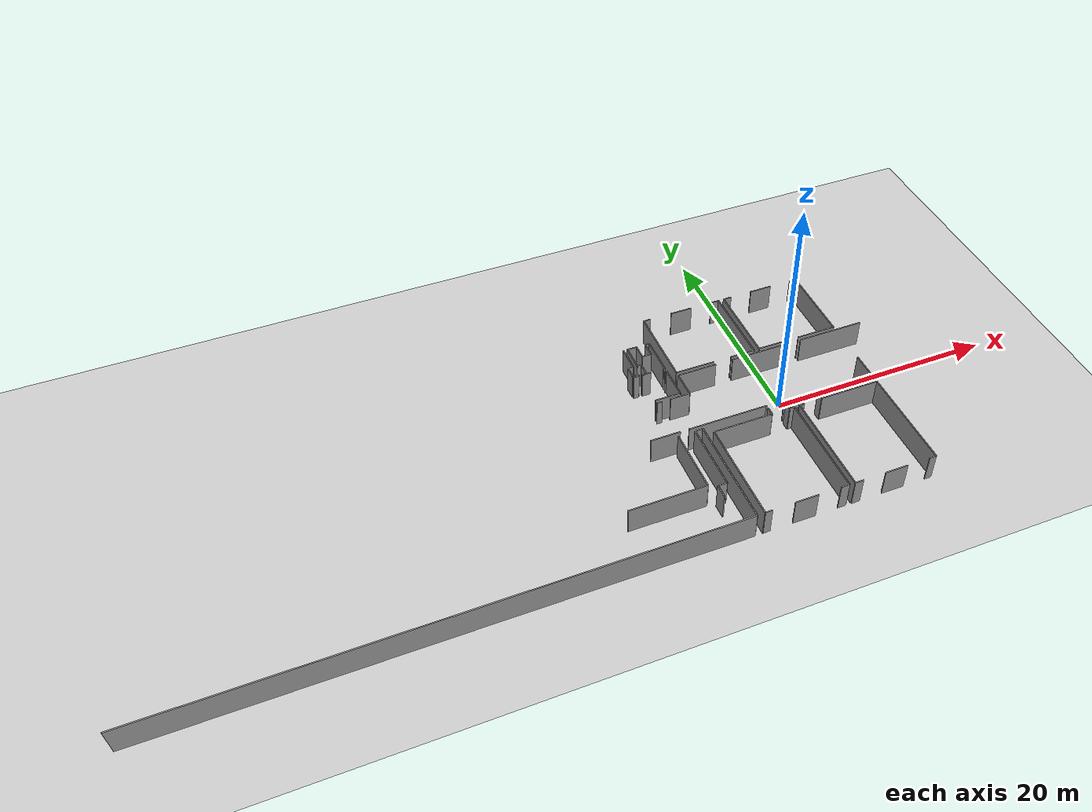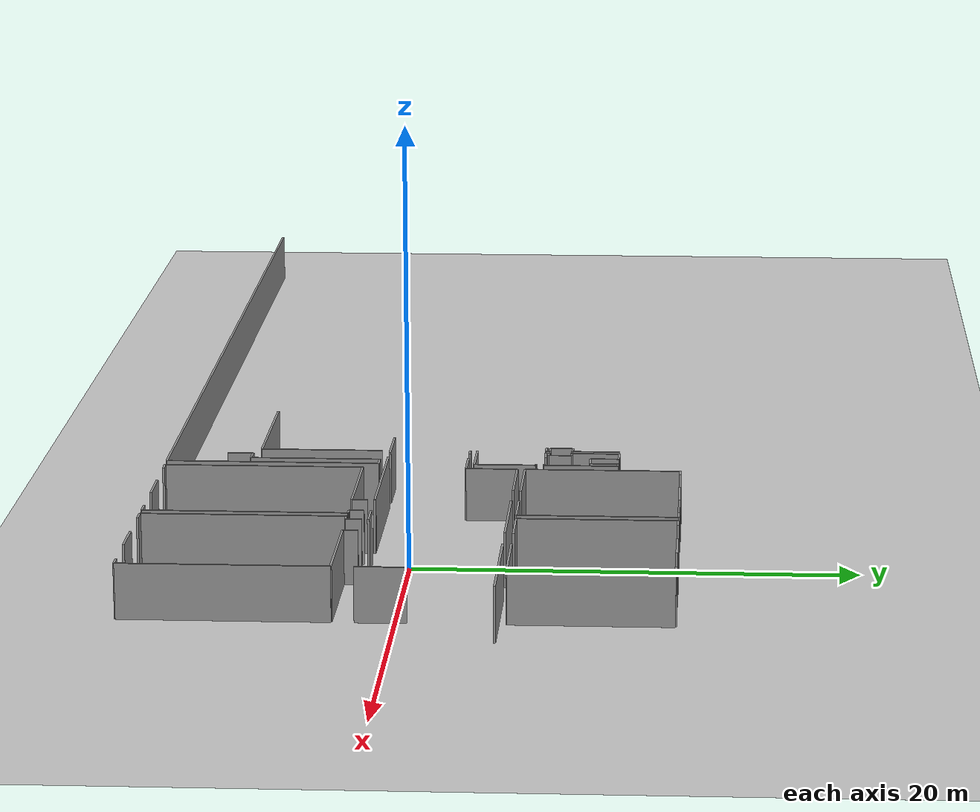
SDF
<sdf version="1.6">
 <world name="default">
  <model name="ground_plane">
   <static>1</static>
   <link name="link">
    <collision name="collision">
     <geometry><plane><normal>0 0 1</normal><size>100 100</size></plane></geometry>
     <surface><friction><ode><mu>100</mu><mu2>50</mu2></ode></friction></surface>
    </collision>
    <visual name="visual">
     <cast_shadows>0</cast_shadows>
     <geometry><plane><normal>0 0 1</normal><size>100 100</size></plane></geometry>
     <material>
      <script><uri>file://media/materials/scripts/gazebo.material</uri><name>Gazebo/Grey</name></script>
     </material>
    </visual>
   </link>
  </model>
  <model name="0510034693_Layout1">
   <static>1</static>
   <link name="Wall_7">
    <collision name="Wall_7_Collision">
     <geometry><box><size>1.19882918617 0.1 2.5</size></box></geometry>
     <pose>0.599414593086 0 1.25 0 0 0</pose>
    </collision>
    <visual name="Wall_7_Visual">
     <pose>0.599414593086 0 1.25 0 0 0</pose>
     <geometry><box><size>1.19882918617 0.1 2.5</size></box></geometry>
     <material>
      <script><uri>file://media/materials/scripts/gazebo.material</uri><name>Gazebo/Grey</name></script>
      <ambient>1 1 1 1</ambient>
     </material>
    </visual>
    <pose>46.5530333281 -21.2848274647 0 0 0 1.57079632679</pose>
   </link>
   <link name="Wall_8">
    <collision name="Wall_8_Collision">
     <geometry><box><size>0.790261303437 0.1 2.5</size></box></geometry>
     <pose>0.395130651718 0 1.25 0 0 0</pose>
    </collision>
    <visual name="Wall_8_Visual">
     <pose>0.395130651718 0 1.25 0 0 0</pose>
     <geometry><box><size>0.790261303437 0.1 2.5</size></box></geometry>
     <material>
      <script><uri>file://media/materials/scripts/gazebo.material</uri><name>Gazebo/Grey</name></script>
      <ambient>1 1 1 1</ambient>
     </material>
    </visual>
    <pose>46.5530333281 -20.0859982785 0 0 0 0.0</pose>
   </link>
   <link name="Wall_9">
    <collision name="Wall_9_Collision">
     <geometry><box><size>6.02964050336 0.1 2.5</size></box></geometry>
     <pose>3.01482025168 0 1.25 0 0 0</pose>
    </collision>
    <visual name="Wall_9_Visual">
     <pose>3.01482025168 0 1.25 0 0 0</pose>
     <geometry><box><size>6.02964050336 0.1 2.5</size></box></geometry>
     <material>
      <script><uri>file://media/materials/scripts/gazebo.material</uri><name>Gazebo/Grey</name></script>
      <ambient>1 1 1 1</ambient>
     </material>
    </visual>
    <pose>47.3432946316 -20.0859982785 0 0 0 1.57079632679</pose>
   </link>
   <link name="Wall_10">
    <collision name="Wall_10_Collision">
     <geometry><box><size>0.697848648608 0.1 2.5</size></box></geometry>
     <pose>0.348924324304 0 1.25 0 0 0</pose>
    </collision>
    <visual name="Wall_10_Visual">
     <pose>0.348924324304 0 1.25 0 0 0</pose>
     <geometry><box><size>0.697848648608 0.1 2.5</size></box></geometry>
     <material>
      <script><uri>file://media/materials/scripts/gazebo.material</uri><name>Gazebo/Grey</name></script>
      <ambient>1 1 1 1</ambient>
     </material>
    </visual>
    <pose>47.3432946316 -14.0563577751 0 0 0 0.0</pose>
   </link>
   <link name="Wall_11">
    <collision name="Wall_11_Collision">
     <geometry><box><size>9.88777376774 0.1 2.5</size></box></geometry>
     <pose>4.94388688387 0 1.25 0 0 0</pose>
    </collision>
    <visual name="Wall_11_Visual">
     <pose>4.94388688387 0 1.25 0 0 0</pose>
     <geometry><box><size>9.88777376774 0.1 2.5</size></box></geometry>
     <material>
      <script><uri>file://media/materials/scripts/gazebo.material</uri><name>Gazebo/Grey</name></script>
      <ambient>1 1 1 1</ambient>
     </material>
    </visual>
    <pose>48.0411432802 -14.0563577751 0 0 0 -1.57079632679</pose>
   </link>
   <link name="Wall_12">
    <collision name="Wall_12_Collision">
     <geometry><box><size>48.0411493179 0.1 2.5</size></box></geometry>
     <pose>24.0205746589 0 1.25 0 0 0</pose>
    </collision>
    <visual name="Wall_12_Visual">
     <pose>24.0205746589 0 1.25 0 0 0</pose>
     <geometry><box><size>48.0411493179 0.1 2.5</size></box></geometry>
     <material>
      <script><uri>file://media/materials/scripts/gazebo.material</uri><name>Gazebo/Grey</name></script>
      <ambient>1 1 1 1</ambient>
     </material>
    </visual>
    <pose>48.0411432802 -23.9441315429 0 0 0 -3.14109129998</pose>
   </link>
   <link name="Wall_21">
    <collision name="Wall_21_Collision">
     <geometry><box><size>0.46003501286 0.1 2.5</size></box></geometry>
     <pose>0.23001750643 0 1.25 0 0 0</pose>
    </collision>
    <visual name="Wall_21_Visual">
     <pose>0.23001750643 0 1.25 0 0 0</pose>
     <geometry><box><size>0.46003501286 0.1 2.5</size></box></geometry>
     <material>
      <script><uri>file://media/materials/scripts/gazebo.material</uri><name>Gazebo/Grey</name></script>
      <ambient>1 1 1 1</ambient>
     </material>
    </visual>
    <pose>45.7426161782 -9.93860706621 0 0 0 0.0</pose>
   </link>
   <link name="Wall_22">
    <collision name="Wall_22_Collision">
     <geometry><box><size>2.6179782545 0.1 2.5</size></box></geometry>
     <pose>1.30898912725 0 1.25 0 0 0</pose>
    </collision>
    <visual name="Wall_22_Visual">
     <pose>1.30898912725 0 1.25 0 0 0</pose>
     <geometry><box><size>2.6179782545 0.1 2.5</size></box></geometry>
     <material>
      <script><uri>file://media/materials/scripts/gazebo.material</uri><name>Gazebo/Grey</name></script>
      <ambient>1 1 1 1</ambient>
     </material>
    </visual>
    <pose>46.202651191 -13.6842985956 0 0 0 3.14159265359</pose>
   </link>
   <link name="Wall_60">
    <collision name="Wall_60_Collision">
     <geometry><box><size>5.68280782351 0.1 2.5</size></box></geometry>
     <pose>2.84140391176 0 1.25 0 0 0</pose>
    </collision>
    <visual name="Wall_60_Visual">
     <pose>2.84140391176 0 1.25 0 0 0</pose>
     <geometry><box><size>5.68280782351 0.1 2.5</size></box></geometry>
     <material>
      <script><uri>file://media/materials/scripts/gazebo.material</uri><name>Gazebo/Grey</name></script>
      <ambient>1 1 1 1</ambient>
     </material>
    </visual>
    <pose>45.848085765 -14.0677667449 0 0 0 -1.57079632679</pose>
   </link>
   <link name="Wall_61">
    <collision name="Wall_61_Collision">
     <geometry><box><size>6.77655080578 0.1 2.5</size></box></geometry>
     <pose>3.38827540289 0 1.25 0 0 0</pose>
    </collision>
    <visual name="Wall_61_Visual">
     <pose>3.38827540289 0 1.25 0 0 0</pose>
     <geometry><box><size>6.77655080578 0.1 2.5</size></box></geometry>
     <material>
      <script><uri>file://media/materials/scripts/gazebo.material</uri><name>Gazebo/Grey</name></script>
      <ambient>1 1 1 1</ambient>
     </material>
    </visual>
    <pose>45.848085765 -19.7505745684 0 0 0 -3.14063861605</pose>
   </link>
   <link name="Wall_69">
    <collision name="Wall_69_Collision">
     <geometry><box><size>0.144513616605 0.1 2.5</size></box></geometry>
     <pose>0.0722568083027 0 1.25 0 0 0</pose>
    </collision>
    <visual name="Wall_69_Visual">
     <pose>0.0722568083027 0 1.25 0 0 0</pose>
     <geometry><box><size>0.144513616605 0.1 2.5</size></box></geometry>
     <material>
      <script><uri>file://media/materials/scripts/gazebo.material</uri><name>Gazebo/Grey</name></script>
      <ambient>1 1 1 1</ambient>
     </material>
    </visual>
    <pose>47.8679804729 -6.73281333785 0 0 0 0.0</pose>
   </link>
   <link name="Wall_70">
    <collision name="Wall_70_Collision">
     <geometry><box><size>2.86732762631 0.1 2.5</size></box></geometry>
     <pose>1.43366381316 0 1.25 0 0 0</pose>
    </collision>
    <visual name="Wall_70_Visual">
     <pose>1.43366381316 0 1.25 0 0 0</pose>
     <geometry><box><size>2.86732762631 0.1 2.5</size></box></geometry>
     <material>
      <script><uri>file://media/materials/scripts/gazebo.material</uri><name>Gazebo/Grey</name></script>
      <ambient>1 1 1 1</ambient>
     </material>
    </visual>
    <pose>48.0124940895 -6.73281333785 0 0 0 -1.57079632679</pose>
   </link>
   <link name="Wall_71">
    <collision name="Wall_71_Collision">
     <geometry><box><size>2.24401757995 0.1 2.5</size></box></geometry>
     <pose>1.12200878998 0 1.25 0 0 0</pose>
    </collision>
    <visual name="Wall_71_Visual">
     <pose>1.12200878998 0 1.25 0 0 0</pose>
     <geometry><box><size>2.24401757995 0.1 2.5</size></box></geometry>
     <material>
      <script><uri>file://media/materials/scripts/gazebo.material</uri><name>Gazebo/Grey</name></script>
      <ambient>1 1 1 1</ambient>
     </material>
    </visual>
    <pose>48.0124940895 -9.60014096416 0 0 0 3.14159265359</pose>
   </link>
   <link name="Wall_79">
    <collision name="Wall_79_Collision">
     <geometry><box><size>2.19483224378 0.1 2.5</size></box></geometry>
     <pose>1.09741612189 0 1.25 0 0 0</pose>
    </collision>
    <visual name="Wall_79_Visual">
     <pose>1.09741612189 0 1.25 0 0 0</pose>
     <geometry><box><size>2.19483224378 0.1 2.5</size></box></geometry>
     <material>
      <script><uri>file://media/materials/scripts/gazebo.material</uri><name>Gazebo/Grey</name></script>
      <ambient>1 1 1 1</ambient>
     </material>
    </visual>
    <pose>45.5960743003 -2.93654204269 0 0 0 -1.57079632679</pose>
   </link>
   <link name="Wall_80">
    <collision name="Wall_80_Collision">
     <geometry><box><size>0.496036650681 0.1 2.5</size></box></geometry>
     <pose>0.248018325341 0 1.25 0 0 0</pose>
    </collision>
    <visual name="Wall_80_Visual">
     <pose>0.248018325341 0 1.25 0 0 0</pose>
     <geometry><box><size>0.496036650681 0.1 2.5</size></box></geometry>
     <material>
      <script><uri>file://media/materials/scripts/gazebo.material</uri><name>Gazebo/Grey</name></script>
      <ambient>1 1 1 1</ambient>
     </material>
    </visual>
    <pose>45.5960743003 -5.13137428646 0 0 0 3.14159265359</pose>
   </link>
   <link name="Wall_81">
    <collision name="Wall_81_Collision">
     <geometry><box><size>1.06268214737 0.1 2.5</size></box></geometry>
     <pose>0.531341073685 0 1.25 0 0 0</pose>
    </collision>
    <visual name="Wall_81_Visual">
     <pose>0.531341073685 0 1.25 0 0 0</pose>
     <geometry><box><size>1.06268214737 0.1 2.5</size></box></geometry>
     <material>
      <script><uri>file://media/materials/scripts/gazebo.material</uri><name>Gazebo/Grey</name></script>
      <ambient>1 1 1 1</ambient>
     </material>
    </visual>
    <pose>45.1000376496 -5.13137428646 0 0 0 -1.57079632679</pose>
   </link>
   <link name="Wall_82">
    <collision name="Wall_82_Collision">
     <geometry><box><size>0.500346705914 0.1 2.5</size></box></geometry>
     <pose>0.250173352957 0 1.25 0 0 0</pose>
    </collision>
    <visual name="Wall_82_Visual">
     <pose>0.250173352957 0 1.25 0 0 0</pose>
     <geometry><box><size>0.500346705914 0.1 2.5</size></box></geometry>
     <material>
      <script><uri>file://media/materials/scripts/gazebo.material</uri><name>Gazebo/Grey</name></script>
      <ambient>1 1 1 1</ambient>
     </material>
    </visual>
    <pose>45.1000376496 -6.19405643383 0 0 0 0.0</pose>
   </link>
   <link name="Wall_83">
    <collision name="Wall_83_Collision">
     <geometry><box><size>0.171641611301 0.1 2.5</size></box></geometry>
     <pose>0.0858208056507 0 1.25 0 0 0</pose>
    </collision>
    <visual name="Wall_83_Visual">
     <pose>0.0858208056507 0 1.25 0 0 0</pose>
     <geometry><box><size>0.171641611301 0.1 2.5</size></box></geometry>
     <material>
      <script><uri>file://media/materials/scripts/gazebo.material</uri><name>Gazebo/Grey</name></script>
      <ambient>1 1 1 1</ambient>
     </material>
    </visual>
    <pose>45.6003843555 -6.19405643383 0 0 0 -1.57079632679</pose>
   </link>
   <link name="Wall_84">
    <collision name="Wall_84_Collision">
     <geometry><box><size>0.500346705914 0.1 2.5</size></box></geometry>
     <pose>0.250173352957 0 1.25 0 0 0</pose>
    </collision>
    <visual name="Wall_84_Visual">
     <pose>0.250173352957 0 1.25 0 0 0</pose>
     <geometry><box><size>0.500346705914 0.1 2.5</size></box></geometry>
     <material>
      <script><uri>file://media/materials/scripts/gazebo.material</uri><name>Gazebo/Grey</name></script>
      <ambient>1 1 1 1</ambient>
     </material>
    </visual>
    <pose>45.6003843555 -6.36569804514 0 0 0 3.14159265359</pose>
   </link>
   <link name="Wall_86">
    <collision name="Wall_86_Collision">
     <geometry><box><size>0.157570548632 0.1 2.5</size></box></geometry>
     <pose>0.078785274316 0 1.25 0 0 0</pose>
    </collision>
    <visual name="Wall_86_Visual">
     <pose>0.078785274316 0 1.25 0 0 0</pose>
     <geometry><box><size>0.157570548632 0.1 2.5</size></box></geometry>
     <material>
      <script><uri>file://media/materials/scripts/gazebo.material</uri><name>Gazebo/Grey</name></script>
      <ambient>1 1 1 1</ambient>
     </material>
    </visual>
    <pose>45.948991764 -6.37533228624 0 0 0 1.57079632679</pose>
   </link>
   <link name="Wall_87">
    <collision name="Wall_87_Collision">
     <geometry><box><size>0.365467330415 0.1 2.5</size></box></geometry>
     <pose>0.182733665208 0 1.25 0 0 0</pose>
    </collision>
    <visual name="Wall_87_Visual">
     <pose>0.182733665208 0 1.25 0 0 0</pose>
     <geometry><box><size>0.365467330415 0.1 2.5</size></box></geometry>
     <material>
      <script><uri>file://media/materials/scripts/gazebo.material</uri><name>Gazebo/Grey</name></script>
      <ambient>1 1 1 1</ambient>
     </material>
    </visual>
    <pose>45.948991764 -6.21776173761 0 0 0 0.0</pose>
   </link>
   <link name="Wall_88">
    <collision name="Wall_88_Collision">
     <geometry><box><size>1.06242861471 0.1 2.5</size></box></geometry>
     <pose>0.531214307355 0 1.25 0 0 0</pose>
    </collision>
    <visual name="Wall_88_Visual">
     <pose>0.531214307355 0 1.25 0 0 0</pose>
     <geometry><box><size>1.06242861471 0.1 2.5</size></box></geometry>
     <material>
      <script><uri>file://media/materials/scripts/gazebo.material</uri><name>Gazebo/Grey</name></script>
      <ambient>1 1 1 1</ambient>
     </material>
    </visual>
    <pose>46.3144590944 -6.21776173761 0 0 0 1.57079632679</pose>
   </link>
   <link name="Wall_89">
    <collision name="Wall_89_Collision">
     <geometry><box><size>0.361917873165 0.1 2.5</size></box></geometry>
     <pose>0.180958936583 0 1.25 0 0 0</pose>
    </collision>
    <visual name="Wall_89_Visual">
     <pose>0.180958936583 0 1.25 0 0 0</pose>
     <geometry><box><size>0.361917873165 0.1 2.5</size></box></geometry>
     <material>
      <script><uri>file://media/materials/scripts/gazebo.material</uri><name>Gazebo/Grey</name></script>
      <ambient>1 1 1 1</ambient>
     </material>
    </visual>
    <pose>46.3144590944 -5.1553331229 0 0 0 3.14159265359</pose>
   </link>
   <link name="Wall_90">
    <collision name="Wall_90_Collision">
     <geometry><box><size>2.22512939673 0.1 2.5</size></box></geometry>
     <pose>1.11256469837 0 1.25 0 0 0</pose>
    </collision>
    <visual name="Wall_90_Visual">
     <pose>1.11256469837 0 1.25 0 0 0</pose>
     <geometry><box><size>2.22512939673 0.1 2.5</size></box></geometry>
     <material>
      <script><uri>file://media/materials/scripts/gazebo.material</uri><name>Gazebo/Grey</name></script>
      <ambient>1 1 1 1</ambient>
     </material>
    </visual>
    <pose>45.9525412212 -5.1553331229 0 0 0 1.57079632679</pose>
   </link>
   <link name="Wall_91">
    <collision name="Wall_91_Collision">
     <geometry><box><size>0.866828166972 0.1 2.5</size></box></geometry>
     <pose>0.433414083486 0 1.25 0 0 0</pose>
    </collision>
    <visual name="Wall_91_Visual">
     <pose>0.433414083486 0 1.25 0 0 0</pose>
     <geometry><box><size>0.866828166972 0.1 2.5</size></box></geometry>
     <material>
      <script><uri>file://media/materials/scripts/gazebo.material</uri><name>Gazebo/Grey</name></script>
      <ambient>1 1 1 1</ambient>
     </material>
    </visual>
    <pose>45.9525412212 -2.93020372617 0 0 0 0.0</pose>
   </link>
   <link name="Wall_92">
    <collision name="Wall_92_Collision">
     <geometry><box><size>1.31608804175 0.1 2.5</size></box></geometry>
     <pose>0.658044020876 0 1.25 0 0 0</pose>
    </collision>
    <visual name="Wall_92_Visual">
     <pose>0.658044020876 0 1.25 0 0 0</pose>
     <geometry><box><size>1.31608804175 0.1 2.5</size></box></geometry>
     <material>
      <script><uri>file://media/materials/scripts/gazebo.material</uri><name>Gazebo/Grey</name></script>
      <ambient>1 1 1 1</ambient>
     </material>
    </visual>
    <pose>46.8193693882 -2.93020372617 0 0 0 -1.57079632679</pose>
   </link>
   <link name="Wall_93">
    <collision name="Wall_93_Collision">
     <geometry><box><size>0.811558046936 0.1 2.5</size></box></geometry>
     <pose>0.405779023468 0 1.25 0 0 0</pose>
    </collision>
    <visual name="Wall_93_Visual">
     <pose>0.405779023468 0 1.25 0 0 0</pose>
     <geometry><box><size>0.811558046936 0.1 2.5</size></box></geometry>
     <material>
      <script><uri>file://media/materials/scripts/gazebo.material</uri><name>Gazebo/Grey</name></script>
      <ambient>1 1 1 1</ambient>
     </material>
    </visual>
    <pose>46.8193693882 -4.24629176792 0 0 0 0.0</pose>
   </link>
   <link name="Wall_94">
    <collision name="Wall_94_Collision">
     <geometry><box><size>1.31291888349 0.1 2.5</size></box></geometry>
     <pose>0.656459441746 0 1.25 0 0 0</pose>
    </collision>
    <visual name="Wall_94_Visual">
     <pose>0.656459441746 0 1.25 0 0 0</pose>
     <geometry><box><size>1.31291888349 0.1 2.5</size></box></geometry>
     <material>
      <script><uri>file://media/materials/scripts/gazebo.material</uri><name>Gazebo/Grey</name></script>
      <ambient>1 1 1 1</ambient>
     </material>
    </visual>
    <pose>47.6309274351 -4.24629176792 0 0 0 1.57079632679</pose>
   </link>
   <link name="Wall_95">
    <collision name="Wall_95_Collision">
     <geometry><box><size>0.379158094094 0.1 2.5</size></box></geometry>
     <pose>0.189579047047 0 1.25 0 0 0</pose>
    </collision>
    <visual name="Wall_95_Visual">
     <pose>0.189579047047 0 1.25 0 0 0</pose>
     <geometry><box><size>0.379158094094 0.1 2.5</size></box></geometry>
     <material>
      <script><uri>file://media/materials/scripts/gazebo.material</uri><name>Gazebo/Grey</name></script>
      <ambient>1 1 1 1</ambient>
     </material>
    </visual>
    <pose>47.6309274351 -2.93337288443 0 0 0 0.0</pose>
   </link>
   <link name="Wall_96">
    <collision name="Wall_96_Collision">
     <geometry><box><size>3.42966306777 0.1 2.5</size></box></geometry>
     <pose>1.71483153389 0 1.25 0 0 0</pose>
    </collision>
    <visual name="Wall_96_Visual">
     <pose>1.71483153389 0 1.25 0 0 0</pose>
     <geometry><box><size>3.42966306777 0.1 2.5</size></box></geometry>
     <material>
      <script><uri>file://media/materials/scripts/gazebo.material</uri><name>Gazebo/Grey</name></script>
      <ambient>1 1 1 1</ambient>
     </material>
    </visual>
    <pose>48.0100855292 -2.93337288443 0 0 0 -1.57079632679</pose>
   </link>
   <link name="Wall_97">
    <collision name="Wall_97_Collision">
     <geometry><box><size>0.133231413204 0.1 2.5</size></box></geometry>
     <pose>0.0666157066019 0 1.25 0 0 0</pose>
    </collision>
    <visual name="Wall_97_Visual">
     <pose>0.0666157066019 0 1.25 0 0 0</pose>
     <geometry><box><size>0.133231413204 0.1 2.5</size></box></geometry>
     <material>
      <script><uri>file://media/materials/scripts/gazebo.material</uri><name>Gazebo/Grey</name></script>
      <ambient>1 1 1 1</ambient>
     </material>
    </visual>
    <pose>48.0100855292 -6.3630359522 0 0 0 3.14159265359</pose>
   </link>
   <link name="Wall_98">
    <collision name="Wall_98_Collision">
     <geometry><box><size>0.741938467367 0.1 2.5</size></box></geometry>
     <pose>0.370969233684 0 1.25 0 0 0</pose>
    </collision>
    <visual name="Wall_98_Visual">
     <pose>0.370969233684 0 1.25 0 0 0</pose>
     <geometry><box><size>0.741938467367 0.1 2.5</size></box></geometry>
     <material>
      <script><uri>file://media/materials/scripts/gazebo.material</uri><name>Gazebo/Grey</name></script>
      <ambient>1 1 1 1</ambient>
     </material>
    </visual>
    <pose>46.6908283292 -6.3630359522 0 0 0 -3.12501864164</pose>
   </link>
   <link name="Wall_104">
    <collision name="Wall_104_Collision">
     <geometry><box><size>7.17725609207 0.1 2.5</size></box></geometry>
     <pose>3.58862804604 0 1.25 0 0 0</pose>
    </collision>
    <visual name="Wall_104_Visual">
     <pose>3.58862804604 0 1.25 0 0 0</pose>
     <geometry><box><size>7.17725609207 0.1 2.5</size></box></geometry>
     <material>
      <script><uri>file://media/materials/scripts/gazebo.material</uri><name>Gazebo/Grey</name></script>
      <ambient>1 1 1 1</ambient>
     </material>
    </visual>
    <pose>48.7284703234 -7.20970827264 0 0 0 1.57079632679</pose>
   </link>
   <link name="Wall_105">
    <collision name="Wall_105_Collision">
     <geometry><box><size>0.618492925805 0.1 2.5</size></box></geometry>
     <pose>0.309246462902 0 1.25 0 0 0</pose>
    </collision>
    <visual name="Wall_105_Visual">
     <pose>0.309246462902 0 1.25 0 0 0</pose>
     <geometry><box><size>0.618492925805 0.1 2.5</size></box></geometry>
     <material>
      <script><uri>file://media/materials/scripts/gazebo.material</uri><name>Gazebo/Grey</name></script>
      <ambient>1 1 1 1</ambient>
     </material>
    </visual>
    <pose>48.7284703234 -0.032452180571 0 0 0 0.0</pose>
   </link>
   <link name="Wall_106">
    <collision name="Wall_106_Collision">
     <geometry><box><size>1.96804727877 0.1 2.5</size></box></geometry>
     <pose>0.984023639385 0 1.25 0 0 0</pose>
    </collision>
    <visual name="Wall_106_Visual">
     <pose>0.984023639385 0 1.25 0 0 0</pose>
     <geometry><box><size>1.96804727877 0.1 2.5</size></box></geometry>
     <material>
      <script><uri>file://media/materials/scripts/gazebo.material</uri><name>Gazebo/Grey</name></script>
      <ambient>1 1 1 1</ambient>
     </material>
    </visual>
    <pose>51.3879011679 -0.032452180571 0 0 0 0.0</pose>
   </link>
   <link name="Wall_107">
    <collision name="Wall_107_Collision">
     <geometry><box><size>0.758062655526 0.1 2.5</size></box></geometry>
     <pose>0.379031327763 0 1.25 0 0 0</pose>
    </collision>
    <visual name="Wall_107_Visual">
     <pose>0.379031327763 0 1.25 0 0 0</pose>
     <geometry><box><size>0.758062655526 0.1 2.5</size></box></geometry>
     <material>
      <script><uri>file://media/materials/scripts/gazebo.material</uri><name>Gazebo/Grey</name></script>
      <ambient>1 1 1 1</ambient>
     </material>
    </visual>
    <pose>55.3385738534 -0.032452180571 0 0 0 0.0</pose>
   </link>
   <link name="Wall_108">
    <collision name="Wall_108_Collision">
     <geometry><box><size>7.18701709951 0.1 2.5</size></box></geometry>
     <pose>3.59350854976 0 1.25 0 0 0</pose>
    </collision>
    <visual name="Wall_108_Visual">
     <pose>3.59350854976 0 1.25 0 0 0</pose>
     <geometry><box><size>7.18701709951 0.1 2.5</size></box></geometry>
     <material>
      <script><uri>file://media/materials/scripts/gazebo.material</uri><name>Gazebo/Grey</name></script>
      <ambient>1 1 1 1</ambient>
     </material>
    </visual>
    <pose>56.096636509 -0.032452180571 0 0 0 -1.57079632679</pose>
   </link>
   <link name="Wall_109">
    <collision name="Wall_109_Collision">
     <geometry><box><size>2.21587545462 0.1 2.5</size></box></geometry>
     <pose>1.10793772731 0 1.25 0 0 0</pose>
    </collision>
    <visual name="Wall_109_Visual">
     <pose>1.10793772731 0 1.25 0 0 0</pose>
     <geometry><box><size>2.21587545462 0.1 2.5</size></box></geometry>
     <material>
      <script><uri>file://media/materials/scripts/gazebo.material</uri><name>Gazebo/Grey</name></script>
      <ambient>1 1 1 1</ambient>
     </material>
    </visual>
    <pose>56.096636509 -7.21946928008 0 0 0 3.14159265359</pose>
   </link>
   <link name="Wall_110">
    <collision name="Wall_110_Collision">
     <geometry><box><size>3.54427327145 0.1 2.5</size></box></geometry>
     <pose>1.77213663573 0 1.25 0 0 0</pose>
    </collision>
    <visual name="Wall_110_Visual">
     <pose>1.77213663573 0 1.25 0 0 0</pose>
     <geometry><box><size>3.54427327145 0.1 2.5</size></box></geometry>
     <material>
      <script><uri>file://media/materials/scripts/gazebo.material</uri><name>Gazebo/Grey</name></script>
      <ambient>1 1 1 1</ambient>
     </material>
    </visual>
    <pose>52.2727301538 -7.21946928008 0 0 0 3.13883862786</pose>
   </link>
   <link name="Wall_111">
    <collision name="Wall_111_Collision">
     <geometry><box><size>7.16648095399 0.1 2.5</size></box></geometry>
     <pose>3.583240477 0 1.25 0 0 0</pose>
    </collision>
    <visual name="Wall_111_Visual">
     <pose>3.583240477 0 1.25 0 0 0</pose>
     <geometry><box><size>7.16648095399 0.1 2.5</size></box></geometry>
     <material>
      <script><uri>file://media/materials/scripts/gazebo.material</uri><name>Gazebo/Grey</name></script>
      <ambient>1 1 1 1</ambient>
     </material>
    </visual>
    <pose>56.6171390614 -7.19994726521 0 0 0 1.57079632679</pose>
   </link>
   <link name="Wall_112">
    <collision name="Wall_112_Collision">
     <geometry><box><size>0.733343221107 0.1 2.5</size></box></geometry>
     <pose>0.366671610554 0 1.25 0 0 0</pose>
    </collision>
    <visual name="Wall_112_Visual">
     <pose>0.366671610554 0 1.25 0 0 0</pose>
     <geometry><box><size>0.733343221107 0.1 2.5</size></box></geometry>
     <material>
      <script><uri>file://media/materials/scripts/gazebo.material</uri><name>Gazebo/Grey</name></script>
      <ambient>1 1 1 1</ambient>
     </material>
    </visual>
    <pose>56.6171390614 -0.0334663112139 0 0 0 0.0</pose>
   </link>
   <link name="Wall_113">
    <collision name="Wall_113_Collision">
     <geometry><box><size>2.00328831861 0.1 2.5</size></box></geometry>
     <pose>1.0016441593 0 1.25 0 0 0</pose>
    </collision>
    <visual name="Wall_113_Visual">
     <pose>1.0016441593 0 1.25 0 0 0</pose>
     <geometry><box><size>2.00328831861 0.1 2.5</size></box></geometry>
     <material>
      <script><uri>file://media/materials/scripts/gazebo.material</uri><name>Gazebo/Grey</name></script>
      <ambient>1 1 1 1</ambient>
     </material>
    </visual>
    <pose>59.3442631263 -0.0334663112139 0 0 0 0.0</pose>
   </link>
   <link name="Wall_114">
    <collision name="Wall_114_Collision">
     <geometry><box><size>0.613422272591 0.1 2.5</size></box></geometry>
     <pose>0.306711136295 0 1.25 0 0 0</pose>
    </collision>
    <visual name="Wall_114_Visual">
     <pose>0.306711136295 0 1.25 0 0 0</pose>
     <geometry><box><size>0.613422272591 0.1 2.5</size></box></geometry>
     <material>
      <script><uri>file://media/materials/scripts/gazebo.material</uri><name>Gazebo/Grey</name></script>
      <ambient>1 1 1 1</ambient>
     </material>
    </visual>
    <pose>63.3604740047 -0.0334663112139 0 0 0 0.0</pose>
   </link>
   <link name="Wall_115">
    <collision name="Wall_115_Collision">
     <geometry><box><size>7.16026940381 0.1 2.5</size></box></geometry>
     <pose>3.5801347019 0 1.25 0 0 0</pose>
    </collision>
    <visual name="Wall_115_Visual">
     <pose>3.5801347019 0 1.25 0 0 0</pose>
     <geometry><box><size>7.16026940381 0.1 2.5</size></box></geometry>
     <material>
      <script><uri>file://media/materials/scripts/gazebo.material</uri><name>Gazebo/Grey</name></script>
      <ambient>1 1 1 1</ambient>
     </material>
    </visual>
    <pose>63.9738962773 -0.0334663112139 0 0 0 -1.57079632679</pose>
   </link>
   <link name="Wall_116">
    <collision name="Wall_116_Collision">
     <geometry><box><size>3.52739990847 0.1 2.5</size></box></geometry>
     <pose>1.76369995424 0 1.25 0 0 0</pose>
    </collision>
    <visual name="Wall_116_Visual">
     <pose>1.76369995424 0 1.25 0 0 0</pose>
     <geometry><box><size>3.52739990847 0.1 2.5</size></box></geometry>
     <material>
      <script><uri>file://media/materials/scripts/gazebo.material</uri><name>Gazebo/Grey</name></script>
      <ambient>1 1 1 1</ambient>
     </material>
    </visual>
    <pose>63.9738962773 -7.19373571502 0 0 0 3.14159265359</pose>
   </link>
   <link name="Wall_117">
    <collision name="Wall_117_Collision">
     <geometry><box><size>2.23819494808 0.1 2.5</size></box></geometry>
     <pose>1.11909747404 0 1.25 0 0 0</pose>
    </collision>
    <visual name="Wall_117_Visual">
     <pose>1.11909747404 0 1.25 0 0 0</pose>
     <geometry><box><size>2.23819494808 0.1 2.5</size></box></geometry>
     <material>
      <script><uri>file://media/materials/scripts/gazebo.material</uri><name>Gazebo/Grey</name></script>
      <ambient>1 1 1 1</ambient>
     </material>
    </visual>
    <pose>58.8553253902 -7.19373571502 0 0 0 -3.13881740018</pose>
   </link>
   <link name="Wall_204">
    <collision name="Wall_204_Collision">
     <geometry><box><size>9.20323558382 0.1 2.5</size></box></geometry>
     <pose>4.60161779191 0 1.25 0 0 0</pose>
    </collision>
    <visual name="Wall_204_Visual">
     <pose>4.60161779191 0 1.25 0 0 0</pose>
     <geometry><box><size>9.20323558382 0.1 2.5</size></box></geometry>
     <material>
      <script><uri>file://media/materials/scripts/gazebo.material</uri><name>Gazebo/Grey</name></script>
      <ambient>1 1 1 1</ambient>
     </material>
    </visual>
    <pose>56.6056033253 -23.9215671361 0 0 0 1.57079632679</pose>
   </link>
   <link name="Wall_205">
    <collision name="Wall_205_Collision">
     <geometry><box><size>0.405652257138 0.1 2.5</size></box></geometry>
     <pose>0.202826128569 0 1.25 0 0 0</pose>
    </collision>
    <visual name="Wall_205_Visual">
     <pose>0.202826128569 0 1.25 0 0 0</pose>
     <geometry><box><size>0.405652257138 0.1 2.5</size></box></geometry>
     <material>
      <script><uri>file://media/materials/scripts/gazebo.material</uri><name>Gazebo/Grey</name></script>
      <ambient>1 1 1 1</ambient>
     </material>
    </visual>
    <pose>56.6056033253 -14.7183315523 0 0 0 0.0</pose>
   </link>
   <link name="Wall_206">
    <collision name="Wall_206_Collision">
     <geometry><box><size>0.709891449991 0.1 2.5</size></box></geometry>
     <pose>0.354945724996 0 1.25 0 0 0</pose>
    </collision>
    <visual name="Wall_206_Visual">
     <pose>0.354945724996 0 1.25 0 0 0</pose>
     <geometry><box><size>0.709891449991 0.1 2.5</size></box></geometry>
     <material>
      <script><uri>file://media/materials/scripts/gazebo.material</uri><name>Gazebo/Grey</name></script>
      <ambient>1 1 1 1</ambient>
     </material>
    </visual>
    <pose>57.0112555825 -14.7183315523 0 0 0 1.57079632679</pose>
   </link>
   <link name="Wall_207">
    <collision name="Wall_207_Collision">
     <geometry><box><size>0.672115083545 0.1 2.5</size></box></geometry>
     <pose>0.336057541773 0 1.25 0 0 0</pose>
    </collision>
    <visual name="Wall_207_Visual">
     <pose>0.336057541773 0 1.25 0 0 0</pose>
     <geometry><box><size>0.672115083545 0.1 2.5</size></box></geometry>
     <material>
      <script><uri>file://media/materials/scripts/gazebo.material</uri><name>Gazebo/Grey</name></script>
      <ambient>1 1 1 1</ambient>
     </material>
    </visual>
    <pose>58.7104314746 -14.0084401023 0 0 0 -1.57079632679</pose>
   </link>
   <link name="Wall_208">
    <collision name="Wall_208_Collision">
     <geometry><box><size>5.28095855628 0.1 2.5</size></box></geometry>
     <pose>2.64047927814 0 1.25 0 0 0</pose>
    </collision>
    <visual name="Wall_208_Visual">
     <pose>2.64047927814 0 1.25 0 0 0</pose>
     <geometry><box><size>5.28095855628 0.1 2.5</size></box></geometry>
     <material>
      <script><uri>file://media/materials/scripts/gazebo.material</uri><name>Gazebo/Grey</name></script>
      <ambient>1 1 1 1</ambient>
     </material>
    </visual>
    <pose>58.7104314746 -14.6805551858 0 0 0 0.0</pose>
   </link>
   <link name="Wall_209">
    <collision name="Wall_209_Collision">
     <geometry><box><size>9.23999781962 0.1 2.5</size></box></geometry>
     <pose>4.61999890981 0 1.25 0 0 0</pose>
    </collision>
    <visual name="Wall_209_Visual">
     <pose>4.61999890981 0 1.25 0 0 0</pose>
     <geometry><box><size>9.23999781962 0.1 2.5</size></box></geometry>
     <material>
      <script><uri>file://media/materials/scripts/gazebo.material</uri><name>Gazebo/Grey</name></script>
      <ambient>1 1 1 1</ambient>
     </material>
    </visual>
    <pose>63.9913900308 -14.6805551858 0 0 0 -1.57079632679</pose>
   </link>
   <link name="Wall_210">
    <collision name="Wall_210_Collision">
     <geometry><box><size>0.607591021394 0.1 2.5</size></box></geometry>
     <pose>0.303795510697 0 1.25 0 0 0</pose>
    </collision>
    <visual name="Wall_210_Visual">
     <pose>0.303795510697 0 1.25 0 0 0</pose>
     <geometry><box><size>0.607591021394 0.1 2.5</size></box></geometry>
     <material>
      <script><uri>file://media/materials/scripts/gazebo.material</uri><name>Gazebo/Grey</name></script>
      <ambient>1 1 1 1</ambient>
     </material>
    </visual>
    <pose>63.9913900308 -23.9205530054 0 0 0 3.14159265359</pose>
   </link>
   <link name="Wall_211">
    <collision name="Wall_211_Collision">
     <geometry><box><size>2.014950821 0.1 2.5</size></box></geometry>
     <pose>1.0074754105 0 1.25 0 0 0</pose>
    </collision>
    <visual name="Wall_211_Visual">
     <pose>1.0074754105 0 1.25 0 0 0</pose>
     <geometry><box><size>2.014950821 0.1 2.5</size></box></geometry>
     <material>
      <script><uri>file://media/materials/scripts/gazebo.material</uri><name>Gazebo/Grey</name></script>
      <ambient>1 1 1 1</ambient>
     </material>
    </visual>
    <pose>61.3688481884 -23.9205530054 0 0 0 3.14159265359</pose>
   </link>
   <link name="Wall_212">
    <collision name="Wall_212_Collision">
     <geometry><box><size>0.740569596309 0.1 2.5</size></box></geometry>
     <pose>0.370284798155 0 1.25 0 0 0</pose>
    </collision>
    <visual name="Wall_212_Visual">
     <pose>0.370284798155 0 1.25 0 0 0</pose>
     <geometry><box><size>0.740569596309 0.1 2.5</size></box></geometry>
     <material>
      <script><uri>file://media/materials/scripts/gazebo.material</uri><name>Gazebo/Grey</name></script>
      <ambient>1 1 1 1</ambient>
     </material>
    </visual>
    <pose>57.3461722273 -23.9205530054 0 0 0 -3.1402232604</pose>
   </link>
   <link name="Wall_213">
    <collision name="Wall_213_Collision">
     <geometry><box><size>9.20767240538 0.1 2.5</size></box></geometry>
     <pose>4.60383620269 0 1.25 0 0 0</pose>
    </collision>
    <visual name="Wall_213_Visual">
     <pose>4.60383620269 0 1.25 0 0 0</pose>
     <geometry><box><size>9.20767240538 0.1 2.5</size></box></geometry>
     <material>
      <script><uri>file://media/materials/scripts/gazebo.material</uri><name>Gazebo/Grey</name></script>
      <ambient>1 1 1 1</ambient>
     </material>
    </visual>
    <pose>48.7284703234 -23.9365255631 0 0 0 1.57079632679</pose>
   </link>
   <link name="Wall_214">
    <collision name="Wall_214_Collision">
     <geometry><box><size>5.30048057116 0.1 2.5</size></box></geometry>
     <pose>2.65024028558 0 1.25 0 0 0</pose>
    </collision>
    <visual name="Wall_214_Visual">
     <pose>2.65024028558 0 1.25 0 0 0</pose>
     <geometry><box><size>5.30048057116 0.1 2.5</size></box></geometry>
     <material>
      <script><uri>file://media/materials/scripts/gazebo.material</uri><name>Gazebo/Grey</name></script>
      <ambient>1 1 1 1</ambient>
     </material>
    </visual>
    <pose>48.7284703234 -14.7288531577 0 0 0 0.0</pose>
   </link>
   <link name="Wall_215">
    <collision name="Wall_215_Collision">
     <geometry><box><size>0.712426776598 0.1 2.5</size></box></geometry>
     <pose>0.356213388299 0 1.25 0 0 0</pose>
    </collision>
    <visual name="Wall_215_Visual">
     <pose>0.356213388299 0 1.25 0 0 0</pose>
     <geometry><box><size>0.712426776598 0.1 2.5</size></box></geometry>
     <material>
      <script><uri>file://media/materials/scripts/gazebo.material</uri><name>Gazebo/Grey</name></script>
      <ambient>1 1 1 1</ambient>
     </material>
    </visual>
    <pose>54.0289508945 -14.7288531577 0 0 0 1.57079632679</pose>
   </link>
   <link name="Wall_216">
    <collision name="Wall_216_Collision">
     <geometry><box><size>0.682636688965 0.1 2.5</size></box></geometry>
     <pose>0.341318344482 0 1.25 0 0 0</pose>
    </collision>
    <visual name="Wall_216_Visual">
     <pose>0.341318344482 0 1.25 0 0 0</pose>
     <geometry><box><size>0.682636688965 0.1 2.5</size></box></geometry>
     <material>
      <script><uri>file://media/materials/scripts/gazebo.material</uri><name>Gazebo/Grey</name></script>
      <ambient>1 1 1 1</ambient>
     </material>
    </visual>
    <pose>55.6928857468 -14.0164263811 0 0 0 -1.57079632679</pose>
   </link>
   <link name="Wall_217">
    <collision name="Wall_217_Collision">
     <geometry><box><size>0.407300219433 0.1 2.5</size></box></geometry>
     <pose>0.203650109716 0 1.25 0 0 0</pose>
    </collision>
    <visual name="Wall_217_Visual">
     <pose>0.203650109716 0 1.25 0 0 0</pose>
     <geometry><box><size>0.407300219433 0.1 2.5</size></box></geometry>
     <material>
      <script><uri>file://media/materials/scripts/gazebo.material</uri><name>Gazebo/Grey</name></script>
      <ambient>1 1 1 1</ambient>
     </material>
    </visual>
    <pose>55.6928857468 -14.6990630701 0 0 0 0.0</pose>
   </link>
   <link name="Wall_218">
    <collision name="Wall_218_Collision">
     <geometry><box><size>9.21413748823 0.1 2.5</size></box></geometry>
     <pose>4.60706874411 0 1.25 0 0 0</pose>
    </collision>
    <visual name="Wall_218_Visual">
     <pose>4.60706874411 0 1.25 0 0 0</pose>
     <geometry><box><size>9.21413748823 0.1 2.5</size></box></geometry>
     <material>
      <script><uri>file://media/materials/scripts/gazebo.material</uri><name>Gazebo/Grey</name></script>
      <ambient>1 1 1 1</ambient>
     </material>
    </visual>
    <pose>56.1001859662 -14.6990630701 0 0 0 -1.57079632679</pose>
   </link>
   <link name="Wall_219">
    <collision name="Wall_219_Collision">
     <geometry><box><size>0.732582623125 0.1 2.5</size></box></geometry>
     <pose>0.366291311562 0 1.25 0 0 0</pose>
    </collision>
    <visual name="Wall_219_Visual">
     <pose>0.366291311562 0 1.25 0 0 0</pose>
     <geometry><box><size>0.732582623125 0.1 2.5</size></box></geometry>
     <material>
      <script><uri>file://media/materials/scripts/gazebo.material</uri><name>Gazebo/Grey</name></script>
      <ambient>1 1 1 1</ambient>
     </material>
    </visual>
    <pose>56.1001859662 -23.9132005583 0 0 0 3.14159265359</pose>
   </link>
   <link name="Wall_220">
    <collision name="Wall_220_Collision">
     <geometry><box><size>2.02217650183 0.1 2.5</size></box></geometry>
     <pose>1.01108825092 0 1.25 0 0 0</pose>
    </collision>
    <visual name="Wall_220_Visual">
     <pose>1.01108825092 0 1.25 0 0 0</pose>
     <geometry><box><size>2.02217650183 0.1 2.5</size></box></geometry>
     <material>
      <script><uri>file://media/materials/scripts/gazebo.material</uri><name>Gazebo/Grey</name></script>
      <ambient>1 1 1 1</ambient>
     </material>
    </visual>
    <pose>53.3671038837 -23.9132005583 0 0 0 3.14159265359</pose>
   </link>
   <link name="Wall_221">
    <collision name="Wall_221_Collision">
     <geometry><box><size>0.630967003186 0.1 2.5</size></box></geometry>
     <pose>0.315483501593 0 1.25 0 0 0</pose>
    </collision>
    <visual name="Wall_221_Visual">
     <pose>0.315483501593 0 1.25 0 0 0</pose>
     <geometry><box><size>0.630967003186 0.1 2.5</size></box></geometry>
     <material>
      <script><uri>file://media/materials/scripts/gazebo.material</uri><name>Gazebo/Grey</name></script>
      <ambient>1 1 1 1</ambient>
     </material>
    </visual>
    <pose>49.3590060506 -23.9132005583 0 0 0 -3.10461715335</pose>
   </link>
   <link name="Wall_222">
    <collision name="Wall_222_Collision">
     <geometry><box><size>6.99458581003 0.1 2.5</size></box></geometry>
     <pose>3.49729290502 0 1.25 0 0 0</pose>
    </collision>
    <visual name="Wall_222_Visual">
     <pose>3.49729290502 0 1.25 0 0 0</pose>
     <geometry><box><size>6.99458581003 0.1 2.5</size></box></geometry>
     <material>
      <script><uri>file://media/materials/scripts/gazebo.material</uri><name>Gazebo/Grey</name></script>
      <ambient>1 1 1 1</ambient>
     </material>
    </visual>
    <pose>53.9617647394 -13.6926651734 0 0 0 3.14159265359</pose>
   </link>
   <link name="Wall_223">
    <collision name="Wall_223_Collision">
     <geometry><box><size>1.76015049699 0.1 2.5</size></box></geometry>
     <pose>0.880075248494 0 1.25 0 0 0</pose>
    </collision>
    <visual name="Wall_223_Visual">
     <pose>0.880075248494 0 1.25 0 0 0</pose>
     <geometry><box><size>1.76015049699 0.1 2.5</size></box></geometry>
     <material>
      <script><uri>file://media/materials/scripts/gazebo.material</uri><name>Gazebo/Grey</name></script>
      <ambient>1 1 1 1</ambient>
     </material>
    </visual>
    <pose>46.9671789294 -9.9360717396 0 0 0 0.0</pose>
   </link>
   <link name="Wall_224">
    <collision name="Wall_224_Collision">
     <geometry><box><size>2.36976977967 0.1 2.5</size></box></geometry>
     <pose>1.18488488983 0 1.25 0 0 0</pose>
    </collision>
    <visual name="Wall_224_Visual">
     <pose>1.18488488983 0 1.25 0 0 0</pose>
     <geometry><box><size>2.36976977967 0.1 2.5</size></box></geometry>
     <material>
      <script><uri>file://media/materials/scripts/gazebo.material</uri><name>Gazebo/Grey</name></script>
      <ambient>1 1 1 1</ambient>
     </material>
    </visual>
    <pose>48.7273294264 -9.9360717396 0 0 0 1.57079632679</pose>
   </link>
   <link name="Wall_225">
    <collision name="Wall_225_Collision">
     <geometry><box><size>3.53563971995 0.1 2.5</size></box></geometry>
     <pose>1.76781985997 0 1.25 0 0 0</pose>
    </collision>
    <visual name="Wall_225_Visual">
     <pose>1.76781985997 0 1.25 0 0 0</pose>
     <geometry><box><size>3.53563971995 0.1 2.5</size></box></geometry>
     <material>
      <script><uri>file://media/materials/scripts/gazebo.material</uri><name>Gazebo/Grey</name></script>
      <ambient>1 1 1 1</ambient>
     </material>
    </visual>
    <pose>48.7273294264 -7.56630195993 0 0 0 0.0</pose>
   </link>
   <link name="Wall_226">
    <collision name="Wall_226_Collision">
     <geometry><box><size>4.95567615259 0.1 2.5</size></box></geometry>
     <pose>2.4778380763 0 1.25 0 0 0</pose>
    </collision>
    <visual name="Wall_226_Visual">
     <pose>2.4778380763 0 1.25 0 0 0</pose>
     <geometry><box><size>4.95567615259 0.1 2.5</size></box></geometry>
     <material>
      <script><uri>file://media/materials/scripts/gazebo.material</uri><name>Gazebo/Grey</name></script>
      <ambient>1 1 1 1</ambient>
     </material>
    </visual>
    <pose>53.8613658058 -7.56630195993 0 0 0 0.0</pose>
   </link>
   <link name="Wall_227">
    <collision name="Wall_227_Collision">
     <geometry><box><size>5.96803206681 0.1 2.5</size></box></geometry>
     <pose>2.98401603341 0 1.25 0 0 0</pose>
    </collision>
    <visual name="Wall_227_Visual">
     <pose>2.98401603341 0 1.25 0 0 0</pose>
     <geometry><box><size>5.96803206681 0.1 2.5</size></box></geometry>
     <material>
      <script><uri>file://media/materials/scripts/gazebo.material</uri><name>Gazebo/Grey</name></script>
      <ambient>1 1 1 1</ambient>
     </material>
    </visual>
    <pose>60.4714693359 -7.56630195993 0 0 0 0.0</pose>
   </link>
   <link name="Wall_229">
    <collision name="Wall_229_Collision">
     <geometry><box><size>2.26417342648 0.1 2.5</size></box></geometry>
     <pose>1.13208671324 0 1.25 0 0 0</pose>
    </collision>
    <visual name="Wall_229_Visual">
     <pose>1.13208671324 0 1.25 0 0 0</pose>
     <geometry><box><size>2.26417342648 0.1 2.5</size></box></geometry>
     <material>
      <script><uri>file://media/materials/scripts/gazebo.material</uri><name>Gazebo/Grey</name></script>
      <ambient>1 1 1 1</ambient>
     </material>
    </visual>
    <pose>63.9931647595 -11.4400274829 0 0 0 -1.57079632679</pose>
   </link>
   <link name="Wall_231">
    <collision name="Wall_231_Collision">
     <geometry><box><size>1.35868152875 0.1 2.5</size></box></geometry>
     <pose>0.679340764376 0 1.25 0 0 0</pose>
    </collision>
    <visual name="Wall_231_Visual">
     <pose>0.679340764376 0 1.25 0 0 0</pose>
     <geometry><box><size>1.35868152875 0.1 2.5</size></box></geometry>
     <material>
      <script><uri>file://media/materials/scripts/gazebo.material</uri><name>Gazebo/Grey</name></script>
      <ambient>1 1 1 1</ambient>
     </material>
    </visual>
    <pose>57.0458627907 -13.7042009094 0 0 0 3.14159265359</pose>
   </link>
   <link name="Wall_232">
    <collision name="Wall_232_Collision">
     <geometry><box><size>0.110257999113 0.1 2.5</size></box></geometry>
     <pose>0.0551289995565 0 1.25 0 0 0</pose>
    </collision>
    <visual name="Wall_232_Visual">
     <pose>0.0551289995565 0 1.25 0 0 0</pose>
     <geometry><box><size>0.110257999113 0.1 2.5</size></box></geometry>
     <material>
      <script><uri>file://media/materials/scripts/gazebo.material</uri><name>Gazebo/Grey</name></script>
      <ambient>1 1 1 1</ambient>
     </material>
    </visual>
    <pose>54.0714176152 -13.7042009094 0 0 0 3.03677589419</pose>
   </link>
   <pose>-56.35 11.9682171457 0 0 0 0</pose>
  </model>
 </world>
</sdf>
